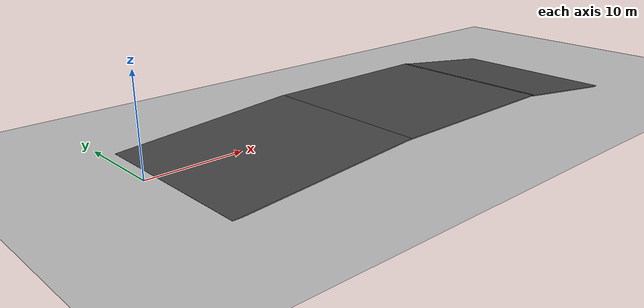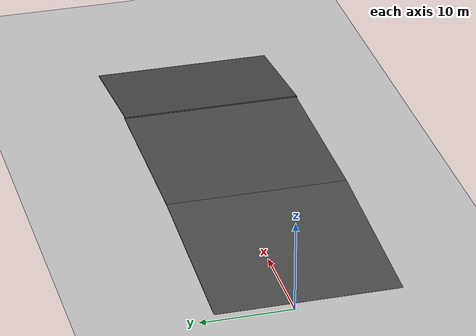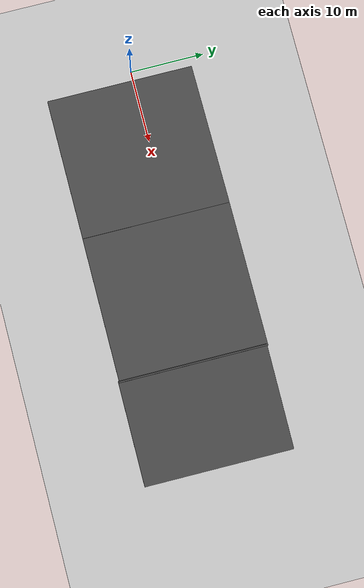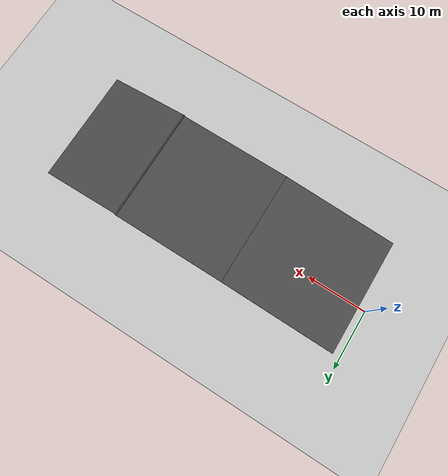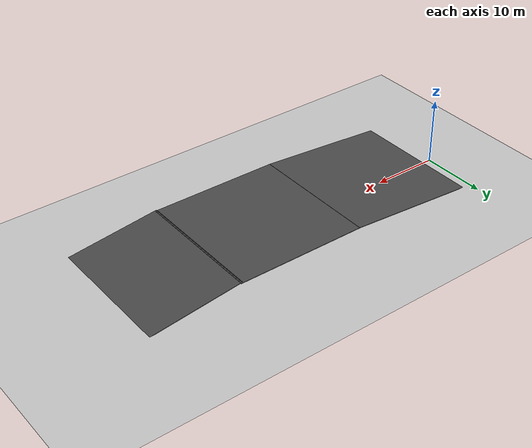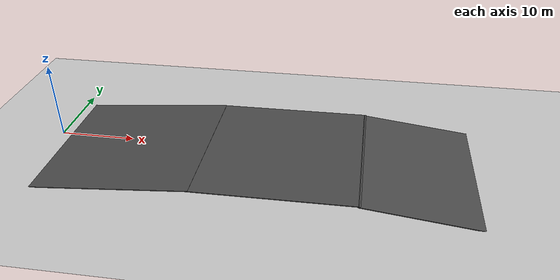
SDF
<sdf version="1.7">
 <world name="default">
  <physics name="default" default="1" type="ode">
   <real_time_factor>1</real_time_factor>
   <ode>
    <solver>
     <type>quick</type>
     <friction_model>pyramid_model</friction_model>
     <thread_position_correction>1</thread_position_correction>
     <iters>50</iters>
     <sor>1.3</sor>
     <use_dynamic_moi_rescaling>0</use_dynamic_moi_rescaling>
    </solver>
    <constraints>
     <cfm>0</cfm>
     <erp>0.2</erp>
     <contact_surface_layer>0.1</contact_surface_layer>
     <contact_max_correcting_vel>100</contact_max_correcting_vel>
    </constraints>
   </ode>
   <max_step_size>0.001</max_step_size>
   <real_time_update_rate>1000</real_time_update_rate>
  </physics>
  <light name="sun" type="directional">
   <pose>0 0 10 0 -0 0</pose>
   <diffuse>0.8 0.8 0.8 1</diffuse>
   <specular>0.2 0.2 0.2 1</specular>
   <attenuation>
    <range>1000</range>
    <constant>0.9</constant>
    <linear>0.01</linear>
    <quadratic>0.001</quadratic>
   </attenuation>
   <direction>-0.5 0.1 -0.9</direction>
   <spot><inner_angle>0</inner_angle><outer_angle>0</outer_angle><falloff>0</falloff></spot>
  </light>
  <model name="ground_plane">
   <static>1</static>
   <link name="link">
    <collision name="collision">
     <geometry><plane><normal>0 0 1</normal><size>100 100</size></plane></geometry>
     <surface><friction><ode><mu>100</mu><mu2>50</mu2></ode></friction></surface>
    </collision>
    <visual name="visual">
     <cast_shadows>0</cast_shadows>
     <geometry><plane><normal>0 0 1</normal><size>100 100</size></plane></geometry>
     <material>
      <script><uri>file://media/materials/scripts/gazebo.material</uri><name>Gazebo/Grey</name></script>
     </material>
    </visual>
   </link>
  </model>
  <model name="asphalt_plane">
   <static>1</static>
   <link name="link">
    <collision name="collision"><geometry><box><size>20 20 0.1</size></box></geometry></collision>
    <visual name="visual">
     <cast_shadows>0</cast_shadows>
     <geometry><box><size>20 20 0.1</size></box></geometry>
     <material>
      <script>
       <uri>model://asphalt_plane/materials/scripts</uri>
       <uri>model://asphalt_plane/materials/textures</uri>
       <name>vrc/asphalt</name>
      </script>
     </material>
    </visual>
   </link>
   <pose>11.1613 -1.88455 0.705537 0 -0.080161 0</pose>
  </model>
  <gravity>0 0 -9.81</gravity>
  <magnetic_field>6e-06 2.3e-05 -4.2e-05</magnetic_field>
  <atmosphere type="adiabatic"/>
  <scene><ambient>0.4 0.4 0.4 1</ambient><background>0.7 0.7 0.7 1</background><shadows>1</shadows></scene>
  <spherical_coordinates>
   <surface_model>EARTH_WGS84</surface_model>
   <latitude_deg>0</latitude_deg>
   <longitude_deg>0</longitude_deg>
   <elevation>0</elevation>
   <heading_deg>0</heading_deg>
  </spherical_coordinates>
  <model name="asphalt_plane_clone">
   <static>1</static>
   <link name="link">
    <collision name="collision"><geometry><box><size>20 20 0.1</size></box></geometry></collision>
    <visual name="visual">
     <cast_shadows>0</cast_shadows>
     <geometry><box><size>20 20 0.1</size></box></geometry>
     <material>
      <script>
       <uri>model://asphalt_plane/materials/scripts</uri>
       <uri>model://asphalt_plane/materials/textures</uri>
       <name>vrc/asphalt</name>
      </script>
     </material>
    </visual>
   </link>
   <pose>30.9824 -1.89047 1.5403 0 -0.005476 0</pose>
  </model>
  <model name="asphalt_plane_clone_0">
   <static>1</static>
   <link name="link">
    <collision name="collision"><geometry><box><size>20 20 0.1</size></box></geometry></collision>
    <visual name="visual">
     <cast_shadows>0</cast_shadows>
     <geometry><box><size>20 20 0.1</size></box></geometry>
     <material>
      <script>
       <uri>model://asphalt_plane/materials/scripts</uri>
       <uri>model://asphalt_plane/materials/textures</uri>
       <name>vrc/asphalt</name>
      </script>
     </material>
    </visual>
   </link>
   <pose>50.6181 -2.02058 0.391501 0 0.121606 0</pose>
  </model>
 </world>
</sdf>
